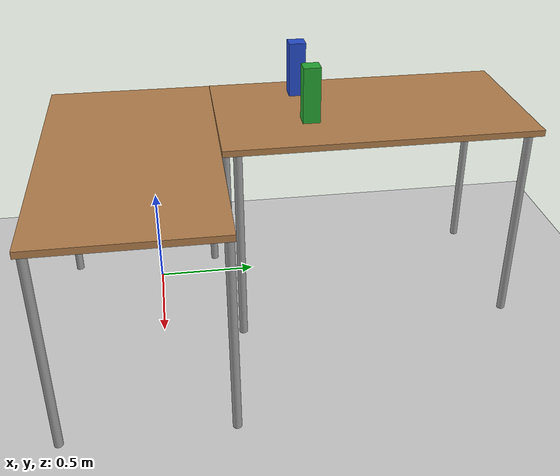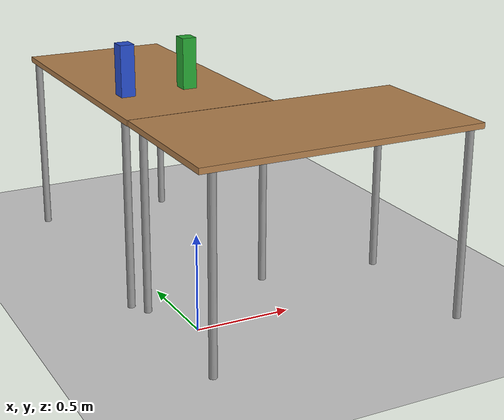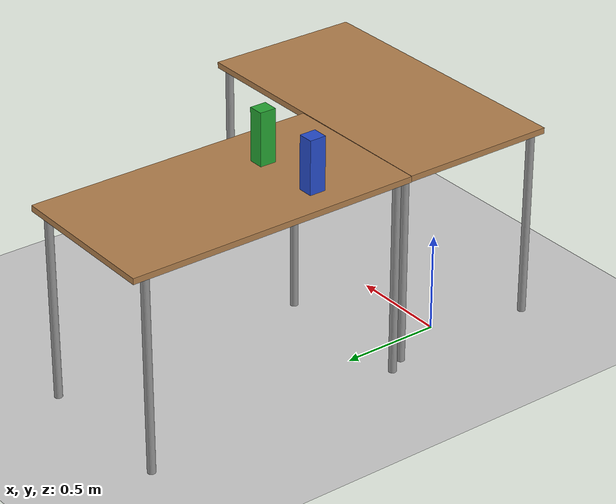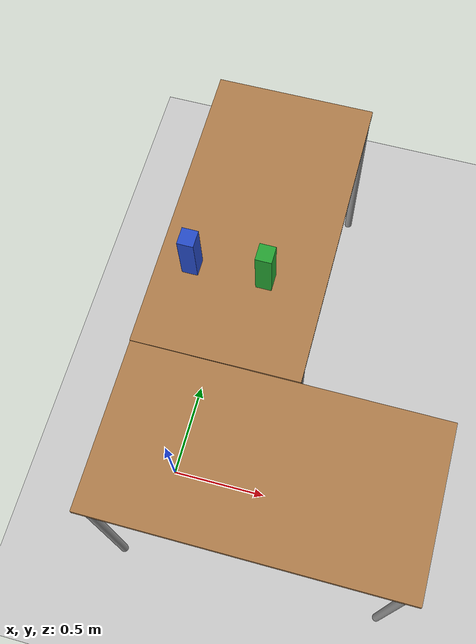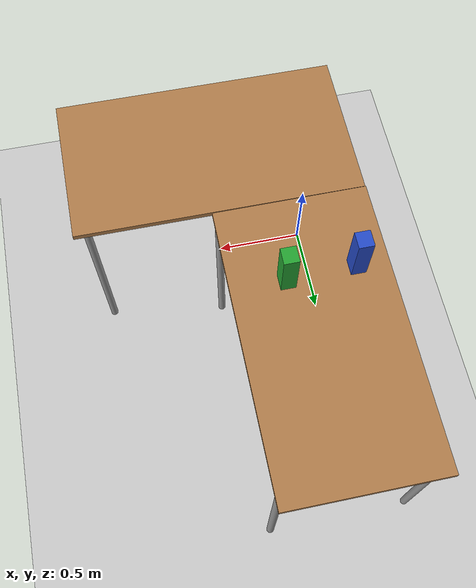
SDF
<sdf version="1.6">
 <world name="default">
  <model name="ground_plane">
   <static>1</static>
   <link name="link">
    <collision name="collision">
     <geometry><plane><normal>0 0 1</normal><size>100 100</size></plane></geometry>
     <surface>
      <contact><collide_bitmask>65535</collide_bitmask></contact>
      <friction><ode><mu>100</mu><mu2>50</mu2></ode></friction>
     </surface>
    </collision>
    <visual name="visual">
     <cast_shadows>0</cast_shadows>
     <geometry><plane><normal>0 0 1</normal><size>100 100</size></plane></geometry>
     <material>
      <script><uri>file://media/materials/scripts/gazebo.material</uri><name>Gazebo/Grey</name></script>
     </material>
    </visual>
   </link>
  </model>
  <light name="sun" type="directional">
   <pose>0 0 10 0 -0 0</pose>
   <diffuse>0.8 0.8 0.8 1</diffuse>
   <specular>0.2 0.2 0.2 1</specular>
   <attenuation>
    <range>1000</range>
    <constant>0.9</constant>
    <linear>0.01</linear>
    <quadratic>0.001</quadratic>
   </attenuation>
   <direction>-0.5 0.1 -0.9</direction>
  </light>
  <gravity>0 0 -9.8</gravity>
  <magnetic_field>6e-06 2.3e-05 -4.2e-05</magnetic_field>
  <atmosphere type="adiabatic"/>
  <physics name="default_physics" default="0" type="ode">
   <max_step_size>0.001</max_step_size>
   <real_time_factor>1</real_time_factor>
   <real_time_update_rate>1000</real_time_update_rate>
  </physics>
  <scene><ambient>0.4 0.4 0.4 1</ambient><background>0.7 0.7 0.7 1</background><shadows>1</shadows></scene>
  <spherical_coordinates>
   <surface_model>EARTH_WGS84</surface_model>
   <latitude_deg>0</latitude_deg>
   <longitude_deg>0</longitude_deg>
   <elevation>0</elevation>
   <heading_deg>0</heading_deg>
  </spherical_coordinates>
  <model name="table">
   <static>1</static>
   <link name="link">
    <collision name="surface">
     <pose>0 0 1 0 -0 0</pose>
     <geometry><box><size>1.5 0.8 0.03</size></box></geometry>
     <surface><friction><ode><mu>0.6</mu><mu2>0.6</mu2></ode></friction></surface>
    </collision>
    <visual name="visual1">
     <pose>0 0 1 0 -0 0</pose>
     <geometry><box><size>1.5 0.8 0.03</size></box></geometry>
     <material>
      <script><uri>file://media/materials/scripts/gazebo.material</uri><name>Gazebo/Wood</name></script>
     </material>
    </visual>
    <collision name="front_left_leg">
     <pose>0.68 0.38 0.5 0 -0 0</pose>
     <geometry><cylinder><radius>0.02</radius><length>1</length></cylinder></geometry>
    </collision>
    <visual name="front_left_leg">
     <pose>0.68 0.38 0.5 0 -0 0</pose>
     <geometry><cylinder><radius>0.02</radius><length>1</length></cylinder></geometry>
     <material>
      <script><uri>file://media/materials/scripts/gazebo.material</uri><name>Gazebo/Grey</name></script>
     </material>
    </visual>
    <collision name="front_right_leg">
     <pose>0.68 -0.38 0.5 0 -0 0</pose>
     <geometry><cylinder><radius>0.02</radius><length>1</length></cylinder></geometry>
    </collision>
    <visual name="front_right_leg">
     <pose>0.68 -0.38 0.5 0 -0 0</pose>
     <geometry><cylinder><radius>0.02</radius><length>1</length></cylinder></geometry>
     <material>
      <script><uri>file://media/materials/scripts/gazebo.material</uri><name>Gazebo/Grey</name></script>
     </material>
    </visual>
    <collision name="back_right_leg">
     <pose>-0.68 -0.38 0.5 0 -0 0</pose>
     <geometry><cylinder><radius>0.02</radius><length>1</length></cylinder></geometry>
    </collision>
    <visual name="back_right_leg">
     <pose>-0.68 -0.38 0.5 0 -0 0</pose>
     <geometry><cylinder><radius>0.02</radius><length>1</length></cylinder></geometry>
     <material>
      <script><uri>file://media/materials/scripts/gazebo.material</uri><name>Gazebo/Grey</name></script>
     </material>
    </visual>
    <collision name="back_left_leg">
     <pose>-0.68 0.38 0.5 0 -0 0</pose>
     <geometry><cylinder><radius>0.02</radius><length>1</length></cylinder></geometry>
    </collision>
    <visual name="back_left_leg">
     <pose>-0.68 0.38 0.5 0 -0 0</pose>
     <geometry><cylinder><radius>0.02</radius><length>1</length></cylinder></geometry>
     <material>
      <script><uri>file://media/materials/scripts/gazebo.material</uri><name>Gazebo/Grey</name></script>
     </material>
    </visual>
   </link>
   <pose>0.542468 -0.078833 0 0 -0 0</pose>
  </model>
  <model name="unit_box">
   <pose>-0.044429 0.755437 1.15057 3e-06 -1e-06 0.000165</pose>
   <link name="link">
    <inertial>
     <mass>1</mass>
     <inertia>
      <ixx>0.166667</ixx>
      <ixy>0</ixy>
      <ixz>0</ixz>
      <iyy>0.166667</iyy>
      <iyz>0</iyz>
      <izz>0.166667</izz>
     </inertia>
    </inertial>
    <collision name="collision">
     <geometry><box><size>0.0763797 0.0832988 0.271137</size></box></geometry>
    </collision>
    <visual name="visual">
     <geometry><box><size>0.0763797 0.0832988 0.271137</size></box></geometry>
     <material>
      <script><name>Gazebo/Blue</name><uri>file://media/materials/scripts/gazebo.material</uri></script>
     </material>
    </visual>
   </link>
  </model>
  <model name="table_0">
   <static>1</static>
   <link name="link">
    <collision name="surface">
     <pose>0 0 1 0 -0 0</pose>
     <geometry><box><size>1.5 0.8 0.03</size></box></geometry>
     <surface><friction><ode><mu>0.6</mu><mu2>0.6</mu2></ode></friction></surface>
    </collision>
    <visual name="visual1">
     <pose>0 0 1 0 -0 0</pose>
     <geometry><box><size>1.5 0.8 0.03</size></box></geometry>
     <material>
      <script><uri>file://media/materials/scripts/gazebo.material</uri><name>Gazebo/Wood</name></script>
     </material>
    </visual>
    <collision name="front_left_leg">
     <pose>0.68 0.38 0.5 0 -0 0</pose>
     <geometry><cylinder><radius>0.02</radius><length>1</length></cylinder></geometry>
    </collision>
    <visual name="front_left_leg">
     <pose>0.68 0.38 0.5 0 -0 0</pose>
     <geometry><cylinder><radius>0.02</radius><length>1</length></cylinder></geometry>
     <material>
      <script><uri>file://media/materials/scripts/gazebo.material</uri><name>Gazebo/Grey</name></script>
     </material>
    </visual>
    <collision name="front_right_leg">
     <pose>0.68 -0.38 0.5 0 -0 0</pose>
     <geometry><cylinder><radius>0.02</radius><length>1</length></cylinder></geometry>
    </collision>
    <visual name="front_right_leg">
     <pose>0.68 -0.38 0.5 0 -0 0</pose>
     <geometry><cylinder><radius>0.02</radius><length>1</length></cylinder></geometry>
     <material>
      <script><uri>file://media/materials/scripts/gazebo.material</uri><name>Gazebo/Grey</name></script>
     </material>
    </visual>
    <collision name="back_right_leg">
     <pose>-0.68 -0.38 0.5 0 -0 0</pose>
     <geometry><cylinder><radius>0.02</radius><length>1</length></cylinder></geometry>
    </collision>
    <visual name="back_right_leg">
     <pose>-0.68 -0.38 0.5 0 -0 0</pose>
     <geometry><cylinder><radius>0.02</radius><length>1</length></cylinder></geometry>
     <material>
      <script><uri>file://media/materials/scripts/gazebo.material</uri><name>Gazebo/Grey</name></script>
     </material>
    </visual>
    <collision name="back_left_leg">
     <pose>-0.68 0.38 0.5 0 -0 0</pose>
     <geometry><cylinder><radius>0.02</radius><length>1</length></cylinder></geometry>
    </collision>
    <visual name="back_left_leg">
     <pose>-0.68 0.38 0.5 0 -0 0</pose>
     <geometry><cylinder><radius>0.02</radius><length>1</length></cylinder></geometry>
     <material>
      <script><uri>file://media/materials/scripts/gazebo.material</uri><name>Gazebo/Grey</name></script>
     </material>
    </visual>
   </link>
   <pose>0.186638 1.07417 0 0 -0 1.57431</pose>
  </model>
  <model name="unit_box_1">
   <pose>0.307393 0.767864 1.15057 3e-06 -1e-06 0.000165</pose>
   <link name="link">
    <inertial>
     <mass>1</mass>
     <inertia>
      <ixx>0.166667</ixx>
      <ixy>0</ixy>
      <ixz>0</ixz>
      <iyy>0.166667</iyy>
      <iyz>0</iyz>
      <izz>0.166667</izz>
     </inertia>
    </inertial>
    <collision name="collision"><geometry><box><size>0.07638 0.083299 0.271137</size></box></geometry></collision>
    <visual name="visual">
     <geometry><box><size>0.07638 0.083299 0.271137</size></box></geometry>
     <material>
      <script><name>Gazebo/Green</name><uri>file://media/materials/scripts/gazebo.material</uri></script>
     </material>
    </visual>
   </link>
  </model>
 </world>
</sdf>
